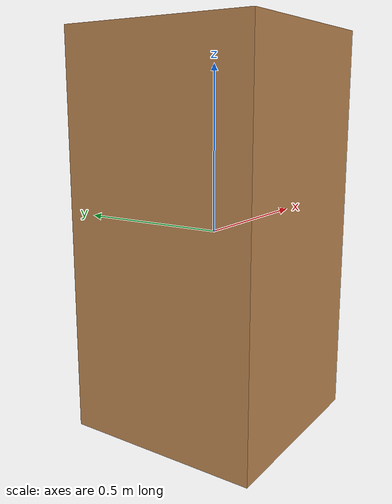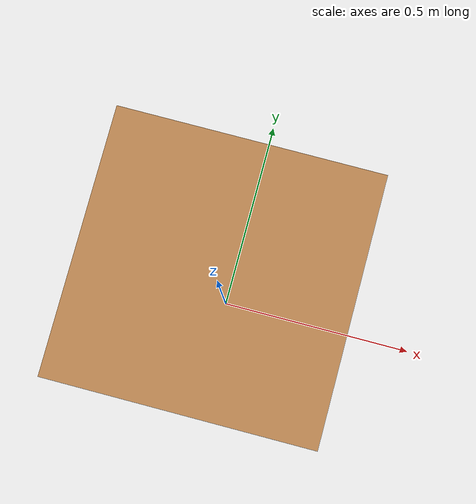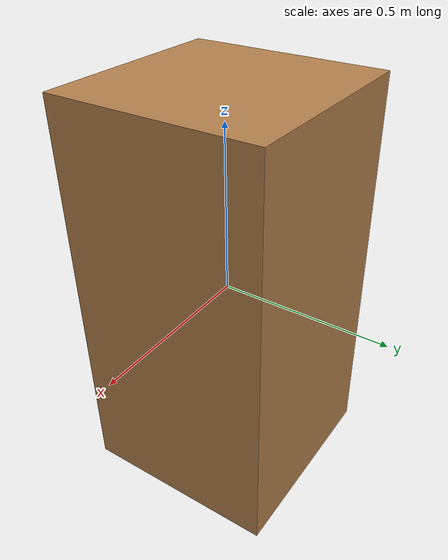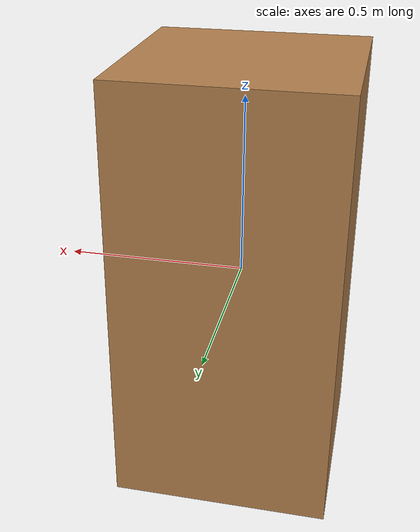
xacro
<?xml version="1.0" encoding="utf-8"?>

<robot name="box" xmlns:xacro="http://www.ros.org/wiki/xacro">
    <link name="my_box">
        <inertial>
          <mass value="0.1" />
          <inertia  ixx="0.0001" ixy="0.0"  ixz="0.0"  iyy="0.0001"  iyz="0.0"  izz="0.0001" />
        </inertial>
        <visual>
          <geometry>
            <box size="0.6 0.6 1.2"/>
          </geometry>
        </visual>
        <collision>
          <geometry>
            <box size="0.6 0.6 1.2"/>
          </geometry>
        </collision>
      </link>
      <gazebo reference="my_box">
        <material>Gazebo/Wood</material>
      </gazebo>
      <gazebo>
        <static>true</static>
      </gazebo>
  </robot>
